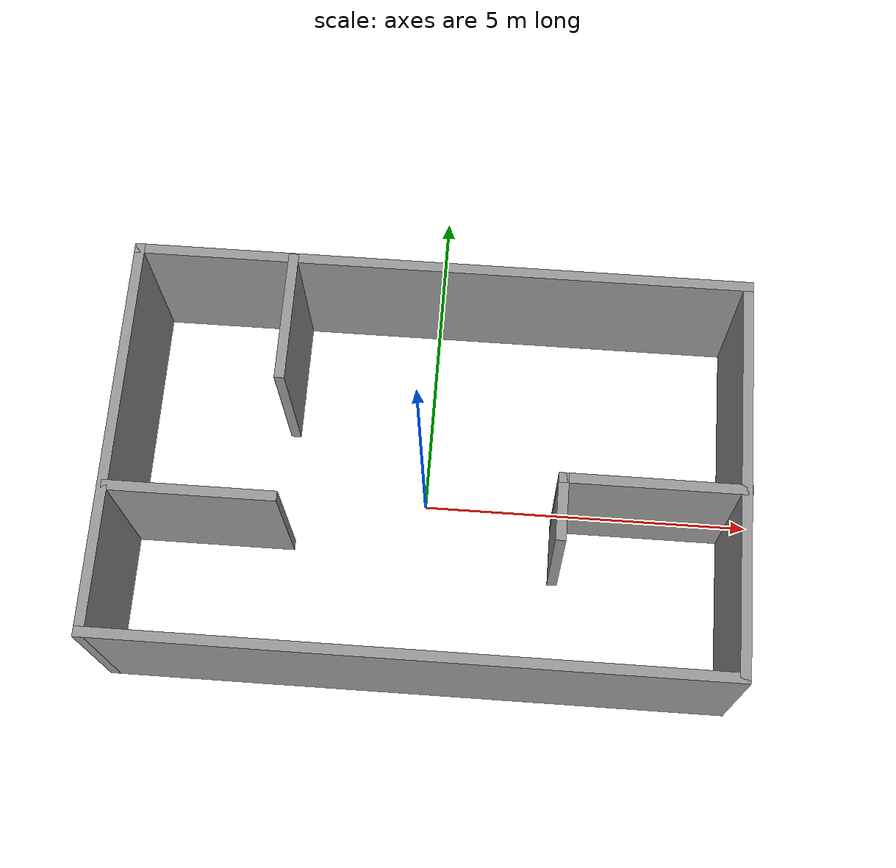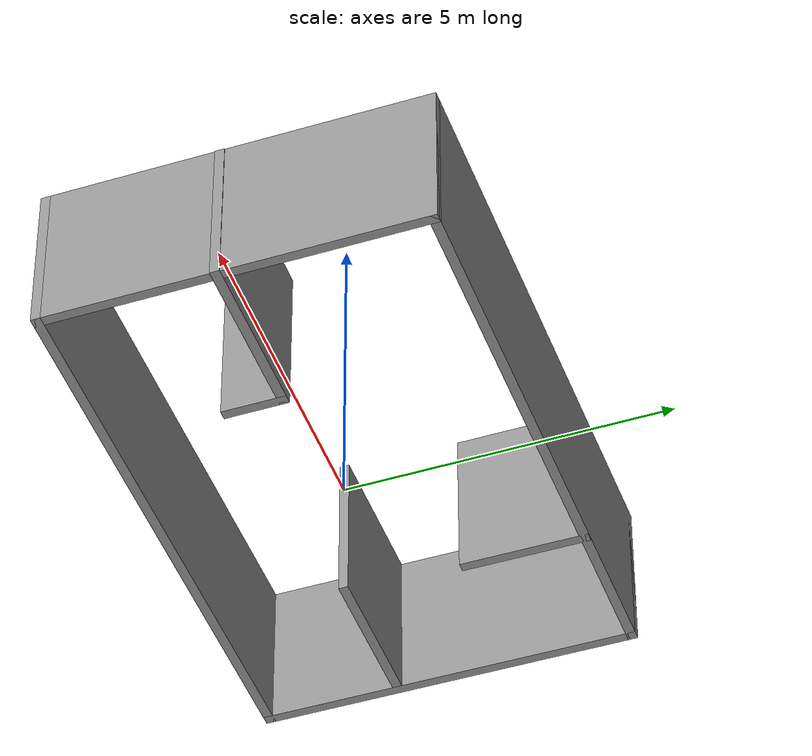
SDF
<?xml version='1.0'?>
<sdf version='1.7'>
  <model name='walls'>
    <pose>0.075586 0.057779 0 0 -0 0</pose>
    <link name='Wall_0'>
      <collision name='Wall_0_Collision'>
        <geometry>
          <box>
            <size>9.25 0.15 2.5</size>
          </box>
        </geometry>
        <pose>0 0 1.25 0 -0 0</pose>
      </collision>
      <visual name='Wall_0_Visual'>
        <pose>0 0 1.25 0 -0 0</pose>
        <geometry>
          <box>
            <size>9.25 0.15 2.5</size>
          </box>
        </geometry>
        <material>
          <script>
            <uri>model://walls/materials/scripts</uri>
            <uri>model://walls/materials/textures</uri>
            <name>vrc/grey_wall</name>
          </script>
          <ambient>1 1 1 1</ambient>
        </material>
        <meta>
          <layer>0</layer>
        </meta>
      </visual>
      <pose>-0.005723 2.925 0 0 -0 0</pose>
    </link>
    <link name='Wall_1'>
      <collision name='Wall_1_Collision'>
        <geometry>
          <box>
            <size>6 0.15 2.5</size>
          </box>
        </geometry>
        <pose>0 0 1.25 0 -0 0</pose>
      </collision>
      <visual name='Wall_1_Visual'>
        <pose>0 0 1.25 0 -0 0</pose>
        <geometry>
          <box>
            <size>6 0.15 2.5</size>
          </box>
        </geometry>
        <material>
          <script>
            <uri>model://walls/materials/scripts</uri>
            <uri>model://walls/materials/textures</uri>
            <name>vrc/grey_wall</name>
          </script>
          <ambient>1 1 1 1</ambient>
        </material>
        <meta>
          <layer>0</layer>
        </meta>
      </visual>
      <pose>4.54428 0 0 0 -0 -1.5708</pose>
    </link>
    <link name='Wall_13'>
      <collision name='Wall_13_Collision'>
        <geometry>
          <box>
            <size>2 0.15 2.5</size>
          </box>
        </geometry>
        <pose>0 0 1.25 0 -0 0</pose>
      </collision>
      <visual name='Wall_13_Visual'>
        <pose>0 0 1.25 0 -0 0</pose>
        <geometry>
          <box>
            <size>2 0.15 2.5</size>
          </box>
        </geometry>
        <material>
          <script>
            <uri>model://walls/materials/scripts</uri>
            <uri>model://walls/materials/textures</uri>
            <name>vrc/grey_wall</name>
          </script>
          <ambient>1 1 1 1</ambient>
        </material>
        <meta>
          <layer>0</layer>
        </meta>
      </visual>
      <pose>-2.24267 1.98861 0 0 -0 -1.5708</pose>
    </link>
    <link name='Wall_15'>
      <collision name='Wall_15_Collision'>
        <geometry>
          <box>
            <size>2.75 0.15 2.5</size>
          </box>
        </geometry>
        <pose>0 0 1.25 0 -0 0</pose>
      </collision>
      <visual name='Wall_15_Visual'>
        <pose>0 0 1.25 0 -0 0</pose>
        <geometry>
          <box>
            <size>2.75 0.15 2.5</size>
          </box>
        </geometry>
        <material>
          <script>
            <uri>model://walls/materials/scripts</uri>
            <uri>model://walls/materials/textures</uri>
            <name>vrc/grey_wall</name>
          </script>
          <ambient>1 1 1 1</ambient>
        </material>
        <meta>
          <layer>0</layer>
        </meta>
      </visual>
      <pose>3.25572 -0.244224 0 0 -0 3.14159</pose>
    </link>
    <link name='Wall_16'>
      <collision name='Wall_16_Collision'>
        <geometry>
          <box>
            <size>1 0.15 2.5</size>
          </box>
        </geometry>
        <pose>0 0 1.25 0 -0 0</pose>
      </collision>
      <visual name='Wall_16_Visual'>
        <pose>0 0 1.25 0 -0 0</pose>
        <geometry>
          <box>
            <size>1 0.15 2.5</size>
          </box>
        </geometry>
        <material>
          <script>
            <uri>model://walls/materials/scripts</uri>
            <uri>model://walls/materials/textures</uri>
            <name>vrc/grey_wall</name>
          </script>
          <ambient>1 1 1 1</ambient>
        </material>
        <meta>
          <layer>0</layer>
        </meta>
      </visual>
      <pose>1.95572 -0.669224 0 0 -0 -1.5708</pose>
    </link>
    <link name='Wall_2'>
      <collision name='Wall_2_Collision'>
        <geometry>
          <box>
            <size>9.25 0.15 2.5</size>
          </box>
        </geometry>
        <pose>0 0 1.25 0 -0 0</pose>
      </collision>
      <visual name='Wall_2_Visual'>
        <pose>0 0 1.25 0 -0 0</pose>
        <geometry>
          <box>
            <size>9.25 0.15 2.5</size>
          </box>
        </geometry>
        <material>
          <script>
            <uri>model://walls/materials/scripts</uri>
            <uri>model://walls/materials/textures</uri>
            <name>vrc/grey_wall</name>
          </script>
          <ambient>1 1 1 1</ambient>
        </material>
        <meta>
          <layer>0</layer>
        </meta>
      </visual>
      <pose>-0.005723 -2.925 0 0 -0 3.14159</pose>
    </link>
    <link name='Wall_3'>
      <collision name='Wall_3_Collision'>
        <geometry>
          <box>
            <size>6 0.15 2.5</size>
          </box>
        </geometry>
        <pose>0 0 1.25 0 -0 0</pose>
      </collision>
      <visual name='Wall_3_Visual'>
        <pose>0 0 1.25 0 -0 0</pose>
        <geometry>
          <box>
            <size>6 0.15 2.5</size>
          </box>
        </geometry>
        <material>
          <script>
            <uri>model://walls/materials/scripts</uri>
            <uri>model://walls/materials/textures</uri>
            <name>vrc/grey_wall</name>
          </script>
          <ambient>1 1 1 1</ambient>
        </material>
        <meta>
          <layer>0</layer>
        </meta>
      </visual>
      <pose>-4.55572 0 0 0 -0 1.5708</pose>
    </link>
    <link name='Wall_5'>
      <collision name='Wall_5_Collision'>
        <geometry>
          <box>
            <size>2.5 0.15 2.5</size>
          </box>
        </geometry>
        <pose>0 0 1.25 0 -0 0</pose>
      </collision>
      <visual name='Wall_5_Visual'>
        <pose>0 0 1.25 0 -0 0</pose>
        <geometry>
          <box>
            <size>2.5 0.15 2.5</size>
          </box>
        </geometry>
        <material>
          <script>
            <uri>model://walls/materials/scripts</uri>
            <uri>model://walls/materials/textures</uri>
            <name>vrc/grey_wall</name>
          </script>
          <ambient>1 1 1 1</ambient>
        </material>
        <meta>
          <layer>0</layer>
        </meta>
      </visual>
      <pose>-3.32038 -0.807404 0 0 -0 0</pose>
    </link>
    <static>1</static>
  </model>
</sdf>
